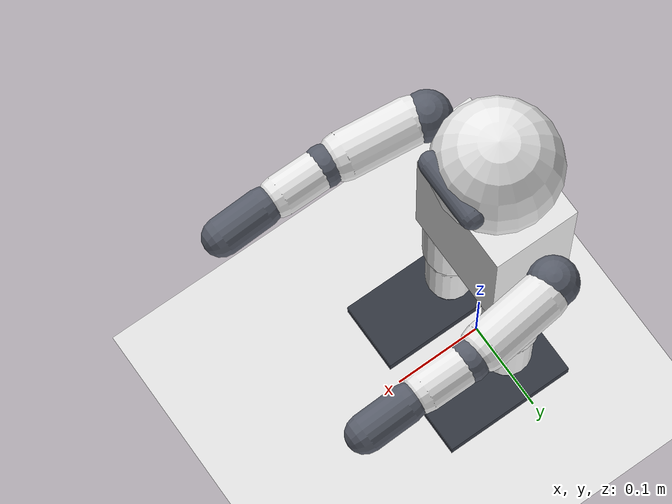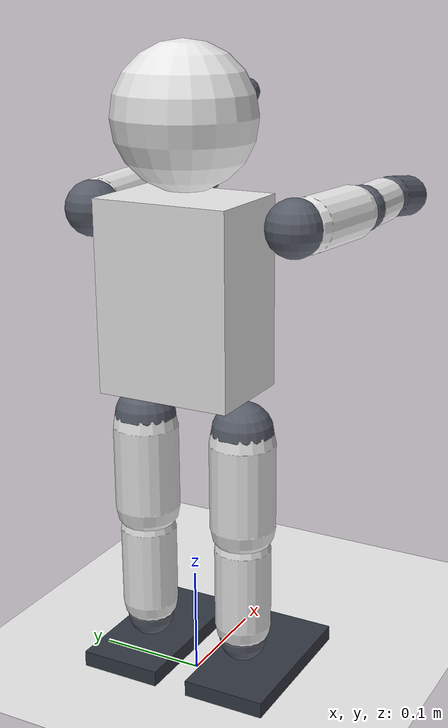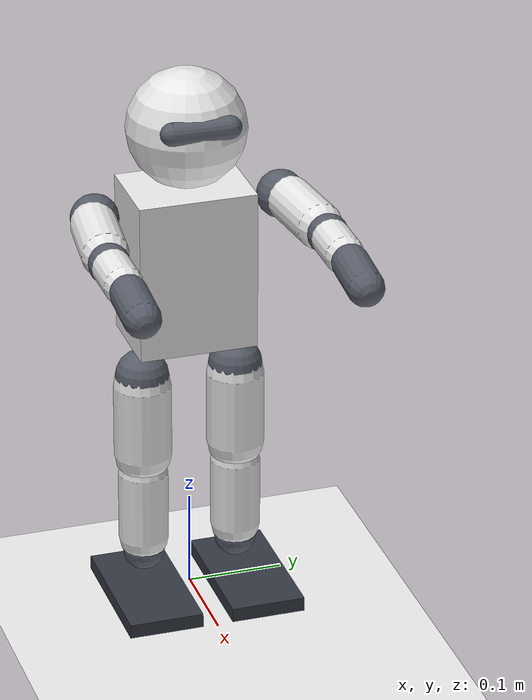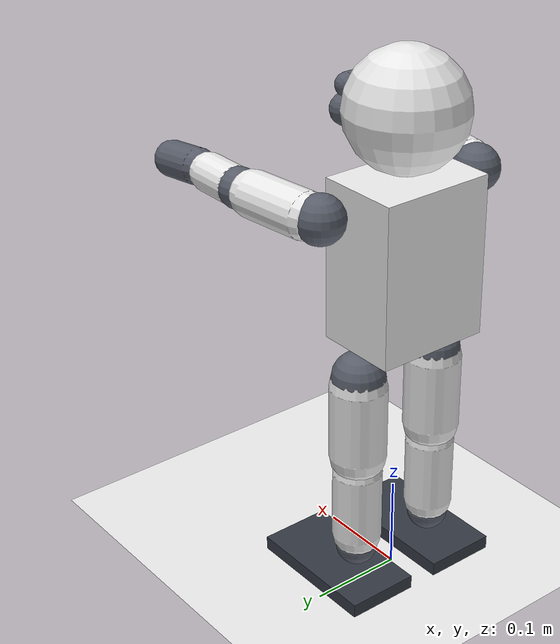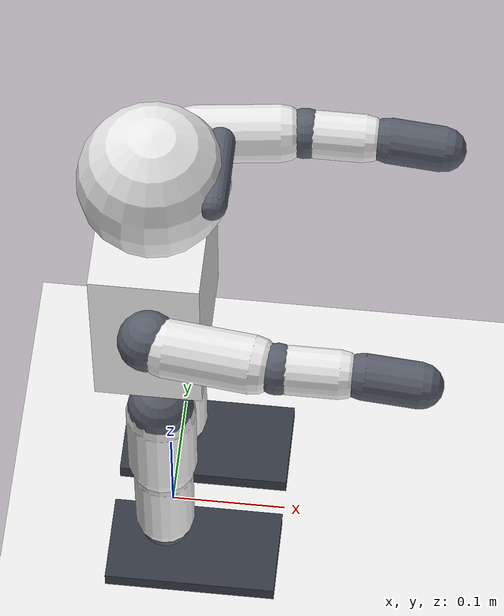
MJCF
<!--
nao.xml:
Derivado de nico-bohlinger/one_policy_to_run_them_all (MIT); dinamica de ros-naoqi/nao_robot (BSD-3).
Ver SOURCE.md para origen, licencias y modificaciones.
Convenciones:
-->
<mujoco model="nao scene">
  <include file="nao.xml"/>

  <statistic center="0 0 0.25" extent="0.8"/>

  <visual>
    <headlight diffuse="0.6 0.6 0.6" ambient="0.3 0.3 0.3" specular="0 0 0"/>
    <rgba haze="0.15 0.25 0.35 1"/>
    <global azimuth="140" elevation="-20" offwidth="1280" offheight="720"/>
  </visual>

  <asset>
    <texture type="skybox" builtin="gradient" rgb1="0.3 0.5 0.7" rgb2="0 0 0" width="512" height="3072"/>
    <texture type="2d" name="groundplane" builtin="checker" mark="edge" rgb1="0.2 0.3 0.4"
             rgb2="0.1 0.2 0.3" markrgb="0.8 0.8 0.8" width="300" height="300"/>
    <material name="groundplane" texture="groundplane" texuniform="true" texrepeat="5 5" reflectance="0.2"/>
  </asset>

  <worldbody>
    <light pos="0 0 3" dir="0 0 -1" directional="true"/>
    <geom name="floor" type="plane" size="0 0 0.05" material="groundplane" contype="1" conaffinity="2"/>
  </worldbody>
</mujoco>

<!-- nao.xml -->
<mujoco model="nao">
  <compiler angle="radian" autolimits="true"/>

  <option timestep="0.002" integrator="implicitfast"/>

  <default>
    <joint damping="0.1" armature="0.01" frictionloss="0.03"/>
    <geom contype="2" conaffinity="1" rgba="0.92 0.92 0.92 1"/>
    <position kp="30" kv="0.5" inheritrange="1"/>
    <default class="leg">
      <geom contype="6" conaffinity="5"/>
    </default>
    <default class="visual">
      <geom contype="0" conaffinity="0" group="1" rgba="0.35 0.37 0.42 1"/>
    </default>
    <default class="foot">
      <geom type="box" size="0.075 0.039 0.0075" contype="6" conaffinity="5" condim="3"
            friction="1.0 0.02 0.01" rgba="0.2 0.22 0.26 1"/>
    </default>
    <!-- Limites de torque (Nm) del modelo original -->
    <default class="head">
      <position forcerange="-1.55 1.55"/>
    </default>
    <default class="hip">
      <position forcerange="-3.348 3.348"/>
    </default>
    <default class="pitch">
      <position forcerange="-3.023 3.023"/>
    </default>
    <default class="shoulder_pitch">
      <position forcerange="-1.329 1.329"/>
    </default>
    <default class="shoulder_roll">
      <position forcerange="-1.7835 1.7835"/>
    </default>
    <default class="elbow">
      <position forcerange="-1.547 1.547"/>
    </default>
  </default>

  <worldbody>
    <body name="torso" pos="0 0 0.335">
      <freejoint name="root"/>
      <inertial pos="-0.00413 0.0 0.04342" mass="1.04956"
                fullinertia="0.00308361 0.0028835 0.0015924 0.00001431 -0.00003302 -0.00002708"/>
      <geom name="torso" type="box" pos="-0.008 0 0.035" size="0.045 0.062 0.085"/>
      <site name="imu" pos="-0.008 0.00606 0.027"/>
      <camera name="track" mode="trackcom" pos="0.2 -1.0 0.1" xyaxes="0.98 0.2 0 -0.04 0.2 0.98"/>

      <!-- Cabeza -->
      <body name="Neck" pos="0 0 0.1265">
        <inertial pos="-1e-05 0 -0.02742" quat="0.70765 -0.00173495 0.00151894 0.706559" mass="0.07842"
                  diaginertia="1.70396e-05 1.60324e-05 5.53348e-06"/>
        <joint name="HeadYaw" axis="0 0 1" range="-2.08567 2.08567"/>
        <body name="Head">
          <inertial pos="-0.00112 0 0.05258" quat="0.463877 0.585354 -0.492966 0.446277" mass="0.60533"
                    diaginertia="0.000990592 0.000957952 0.000811033"/>
          <joint name="HeadPitch" axis="0 1 0" range="-0.671952 0.514872"/>
          <geom name="head" type="sphere" pos="-0.005 0 0.058" size="0.062"/>
          <geom class="visual" type="capsule" fromto="0.045 -0.03 0.075 0.045 0.03 0.075" size="0.012"/>
        </body>
      </body>

      <!-- Pierna izquierda -->
      <body name="LPelvis" pos="0 0.05 -0.085">
        <inertial pos="-0.00781 -0.01114 0.02661" quat="0.232303 0.656505 0.182148 0.69416" mass="0.06981"
                  diaginertia="5.16414e-05 4.58792e-05 2.32239e-05"/>
        <joint name="LHipYawPitch" axis="0 0.707107 -0.707107" range="-1.14529 0.740718"/>
        <body name="LHip">
          <inertial pos="-0.01549 0.00029 -0.00515" quat="0.453959 0.527953 0.574067 0.430853" mass="0.14053"
                    diaginertia="6.08587e-05 5.59269e-05 2.22526e-05"/>
          <joint name="LHipRoll" axis="1 0 0" range="-0.379435 0.79046"/>
          <geom class="visual" type="sphere" size="0.028"/>
          <body name="LThigh">
            <inertial pos="0.00138 0.00221 -0.05373" quat="0.992078 -0.0228023 -0.123519 -0.00190301" mass="0.38968"
                      diaginertia="0.000524114 0.000465732 0.000286453"/>
            <joint name="LHipPitch" axis="0 1 0" range="-1.53589 0.48398"/>
            <geom name="LThigh" class="leg" type="capsule" fromto="0 0 -0.01 0 0 -0.09" size="0.03"/>
            <body name="LTibia" pos="0 0 -0.1">
              <inertial pos="0.00453 0.00225 -0.04936" quat="0.997907 0.0169027 0.0579417 0.0232071" mass="0.30142"
                        diaginertia="0.000449928 0.000388139 0.000181704"/>
              <joint name="LKneePitch" axis="0 1 0" range="-0.0923279 2.11255"/>
              <geom name="LTibia" class="leg" type="capsule" fromto="0 0 -0.012 0 0 -0.088" size="0.026"/>
              <body name="LAnklePitch" pos="0 0 -0.1029">
                <inertial pos="0.00045 0.00029 0.00685" quat="0.447256 0.548803 0.537287 0.458368" mass="0.13416"
                          diaginertia="6.79494e-05 5.56016e-05 3.14223e-05"/>
                <joint name="LAnklePitch" axis="0 1 0" range="-1.18944 0.922581"/>
                <geom class="visual" type="sphere" size="0.022"/>
                <body name="l_foot">
                  <inertial pos="0.0254198 0.00330005 -0.0323906" quat="0.0134363 0.704739 -0.00974782 0.709273"
                            mass="0.171848" diaginertia="0.000412891 0.000353334 8.70025e-05"/>
                  <joint name="LAnkleRoll" axis="1 0 0" range="-0.397761 0.768992"/>
                  <geom name="left_foot" class="foot" pos="0.025 0.005 -0.03761"/>
                  <site name="left_foot" pos="0.025 0.005 -0.04511"/>
                </body>
              </body>
            </body>
          </body>
        </body>
      </body>

      <!-- Pierna derecha -->
      <body name="RPelvis" pos="0 -0.05 -0.085">
        <inertial pos="-0.00781 0.01114 0.02661" quat="-0.286295 0.637526 -0.200888 0.686469" mass="0.06981"
                  diaginertia="6.0003e-05 4.60859e-05 3.15895e-05"/>
        <joint name="RHipYawPitch" axis="0 0.707107 0.707107" range="-1.14529 0.740718"/>
        <body name="RHip">
          <inertial pos="-0.01549 -0.00029 -0.00515" quat="0.431269 0.573083 0.528698 0.453941" mass="0.14053"
                    diaginertia="6.08554e-05 5.59208e-05 2.2268e-05"/>
          <joint name="RHipRoll" axis="1 0 0" range="-0.79046 0.379435"/>
          <geom class="visual" type="sphere" size="0.028"/>
          <body name="RThigh">
            <inertial pos="0.00138 -0.00221 -0.05373" quat="0.99203 0.0205489 -0.124311 0.000726212" mass="0.38968"
                      diaginertia="0.000525121 0.000466802 0.000286518"/>
            <joint name="RHipPitch" axis="0 1 0" range="-1.53589 0.48398"/>
            <geom name="RThigh" class="leg" type="capsule" fromto="0 0 -0.01 0 0 -0.09" size="0.03"/>
            <body name="RTibia" pos="0 0 -0.1">
              <inertial pos="0.00453 -0.00225 -0.04936" quat="0.99698 -0.0149083 0.0724691 -0.0235809" mass="0.30142"
                        diaginertia="0.000452851 0.000387699 0.000177824"/>
              <joint name="RKneePitch" axis="0 1 0" range="-0.0923279 2.11255"/>
              <geom name="RTibia" class="leg" type="capsule" fromto="0 0 -0.012 0 0 -0.088" size="0.026"/>
              <body name="RAnklePitch" pos="0 0 -0.1029">
                <inertial pos="0.00045 -0.00029 0.00685" quat="0.458219 0.537985 0.54818 0.447332" mass="0.13416"
                          diaginertia="6.79942e-05 5.56532e-05 3.14175e-05"/>
                <joint name="RAnklePitch" axis="0 1 0" range="-1.1863 0.932006"/>
                <geom class="visual" type="sphere" size="0.022"/>
                <body name="r_foot">
                  <inertial pos="0.0254198 -0.00330005 -0.0323906" quat="-0.0138336 0.704473 0.00894574 0.70954"
                            mass="0.171848" diaginertia="0.000412175 0.000352454 8.68701e-05"/>
                  <joint name="RAnkleRoll" axis="1 0 0" range="-0.768992 0.397761"/>
                  <geom name="right_foot" class="foot" pos="0.025 -0.005 -0.03761"/>
                  <site name="right_foot" pos="0.025 -0.005 -0.04511"/>
                </body>
              </body>
            </body>
          </body>
        </body>
      </body>

      <!-- Brazo izquierdo -->
      <body name="LShoulder" pos="0 0.098 0.1">
        <inertial pos="-0.00165 -0.02663 0.00014" quat="0.353499 0.572853 -0.442525 0.592494" mass="0.09304"
                  diaginertia="2.02186e-05 1.91002e-05 1.30704e-05"/>
        <joint name="LShoulderPitch" axis="0 1 0" range="-2.08567 2.08567"/>
        <geom class="visual" type="sphere" size="0.025"/>
        <body name="LBicep">
          <inertial pos="0.02455 0.00563 0.0033" quat="0.467645 0.46185 0.492756 0.570257" mass="0.15777"
                    diaginertia="0.00027823 0.000242894 8.25818e-05"/>
          <joint name="LShoulderRoll" axis="0 0 1" range="-0.314159 1.32645"/>
          <geom name="LBicep" type="capsule" fromto="0.015 0.005 0 0.085 0.013 0" size="0.024"/>
          <body name="LElbow" pos="0.105 0.015 0">
            <inertial pos="-0.02744 0 -0.00014" quat="-0.000545392 0.711779 -0.000696018 0.702403" mass="0.06483"
                      diaginertia="2.76333e-05 2.66179e-05 5.592e-06"/>
            <joint name="LElbowYaw" axis="1 0 0" range="-2.08567 2.08567"/>
            <body name="LForeArm">
              <inertial pos="0.02556 0.00281 0.00076" quat="0.481839 0.619088 0.422287 0.454131" mass="0.07761"
                        diaginertia="3.9183e-05 3.6083e-05 2.37632e-05"/>
              <joint name="LElbowRoll" axis="0 0 1" range="-1.54462 -0.0349066"/>
              <geom class="visual" type="sphere" size="0.021"/>
              <geom name="LForeArm" type="capsule" fromto="0.008 0 0 0.05 0 0" size="0.02"/>
              <!-- Mano rigida (WristYaw y dedos eliminados; masa conservada) -->
              <body name="l_hand" pos="0.05595 0 0">
                <inertial pos="0.03434 -0.00088 0.00308" quat="0.346526 0.607704 0.329318 0.634165" mass="0.18533"
                          diaginertia="0.000137482 0.000131631 6.85194e-05"/>
                <geom name="l_hand" type="capsule" fromto="0.012 0 0 0.058 0 -0.006" size="0.019"
                      rgba="0.35 0.37 0.42 1"/>
              </body>
            </body>
          </body>
        </body>
      </body>

      <!-- Brazo derecho -->
      <body name="RShoulder" pos="0 -0.098 0.1">
        <inertial pos="-0.00165 0.02663 0.00014" quat="0.572853 0.353499 -0.592494 0.442525" mass="0.09304"
                  diaginertia="2.02186e-05 1.91002e-05 1.30704e-05"/>
        <joint name="RShoulderPitch" axis="0 1 0" range="-2.08567 2.08567"/>
        <geom class="visual" type="sphere" size="0.025"/>
        <body name="RBicep">
          <inertial pos="0.02455 -0.00563 0.0033" quat="0.556969 0.570609 0.359404 0.484788" mass="0.15777"
                    diaginertia="0.000287934 0.00025515 8.56154e-05"/>
          <joint name="RShoulderRoll" axis="0 0 1" range="-1.32645 0.314159"/>
          <geom name="RBicep" type="capsule" fromto="0.015 -0.005 0 0.085 -0.013 0" size="0.024"/>
          <body name="RElbow" pos="0.105 -0.015 0">
            <inertial pos="-0.02744 0 -0.00014" quat="-0.000545392 0.711779 -0.000696018 0.702403" mass="0.06483"
                      diaginertia="2.76333e-05 2.66179e-05 5.592e-06"/>
            <joint name="RElbowYaw" axis="1 0 0" range="-2.08567 2.08567"/>
            <body name="RForeArm">
              <inertial pos="0.02556 -0.00281 0.00076" quat="0.453039 0.428011 0.593606 0.509111" mass="0.07761"
                        diaginertia="3.92326e-05 3.59586e-05 2.39457e-05"/>
              <joint name="RElbowRoll" axis="0 0 1" range="0.0349066 1.54462"/>
              <geom class="visual" type="sphere" size="0.021"/>
              <geom name="RForeArm" type="capsule" fromto="0.008 0 0 0.05 0 0" size="0.02"/>
              <body name="r_hand" pos="0.05595 0 0">
                <inertial pos="0.03434 0.00088 0.00308" quat="0.422432 0.617987 0.303847 0.589339" mass="0.18533"
                          diaginertia="0.000139307 0.000131711 6.66137e-05"/>
                <geom name="r_hand" type="capsule" fromto="0.012 0 0 0.058 0 -0.006" size="0.019"
                      rgba="0.35 0.37 0.42 1"/>
              </body>
            </body>
          </body>
        </body>
      </body>
    </body>
  </worldbody>

  <!-- En el NAO real LHipYawPitch y RHipYawPitch comparten un unico motor: R = L -->
  <equality>
    <joint name="hip_yaw_pitch_coupling" joint1="RHipYawPitch" joint2="LHipYawPitch" polycoef="0 1 0 0 0"/>
  </equality>

  <!-- Servos de posicion (PD): ctrl = angulo objetivo [rad]. RHipYawPitch no tiene actuador propio. -->
  <actuator>
    <position name="HeadYaw" joint="HeadYaw" class="head"/>
    <position name="HeadPitch" joint="HeadPitch" class="head"/>
    <position name="LHipYawPitch" joint="LHipYawPitch" class="hip"/>
    <position name="LHipRoll" joint="LHipRoll" class="hip"/>
    <position name="LHipPitch" joint="LHipPitch" class="pitch"/>
    <position name="LKneePitch" joint="LKneePitch" class="pitch"/>
    <position name="LAnklePitch" joint="LAnklePitch" class="pitch"/>
    <position name="LAnkleRoll" joint="LAnkleRoll" class="hip"/>
    <position name="RHipRoll" joint="RHipRoll" class="hip"/>
    <position name="RHipPitch" joint="RHipPitch" class="pitch"/>
    <position name="RKneePitch" joint="RKneePitch" class="pitch"/>
    <position name="RAnklePitch" joint="RAnklePitch" class="pitch"/>
    <position name="RAnkleRoll" joint="RAnkleRoll" class="hip"/>
    <position name="LShoulderPitch" joint="LShoulderPitch" class="shoulder_pitch"/>
    <position name="LShoulderRoll" joint="LShoulderRoll" class="shoulder_roll"/>
    <position name="LElbowYaw" joint="LElbowYaw" class="elbow"/>
    <position name="LElbowRoll" joint="LElbowRoll" class="elbow"/>
    <position name="RShoulderPitch" joint="RShoulderPitch" class="shoulder_pitch"/>
    <position name="RShoulderRoll" joint="RShoulderRoll" class="shoulder_roll"/>
    <position name="RElbowYaw" joint="RElbowYaw" class="elbow"/>
    <position name="RElbowRoll" joint="RElbowRoll" class="elbow"/>
  </actuator>

  <sensor>
    <framequat name="torso_quat" objtype="site" objname="imu"/>
    <gyro name="gyro" site="imu"/>
    <accelerometer name="accelerometer" site="imu"/>
    <velocimeter name="local_linvel" site="imu"/>
  </sensor>

  <keyframe>
    <key name="home"
      qpos="0 0 0.3175 1 0 0 0
            0 0
            0 0 -0.4 0.8 -0.4 0
            0 0 -0.4 0.8 -0.4 0
            1.57 0.2 -1.57 -0.2
            1.57 -0.2 1.57 0.2"
      ctrl="0 0
            0 0 -0.4 0.8 -0.4 0
            0 -0.4 0.8 -0.4 0
            1.57 0.2 -1.57 -0.2
            1.57 -0.2 1.57 0.2"/>
  </keyframe>
</mujoco>
